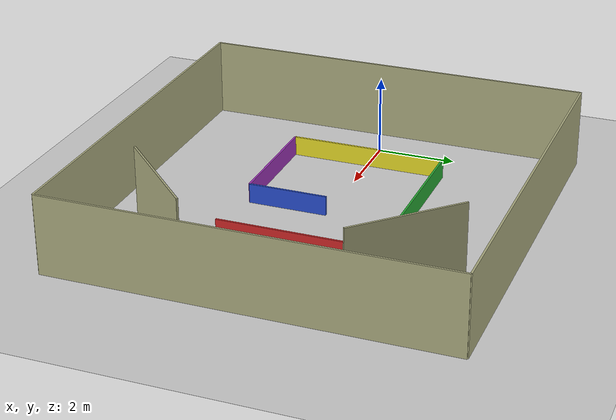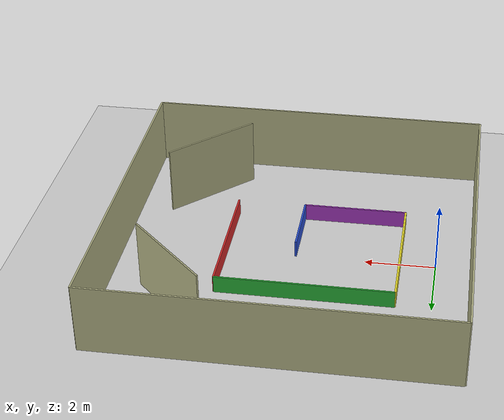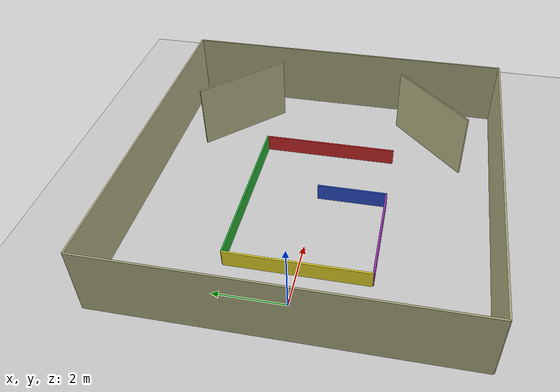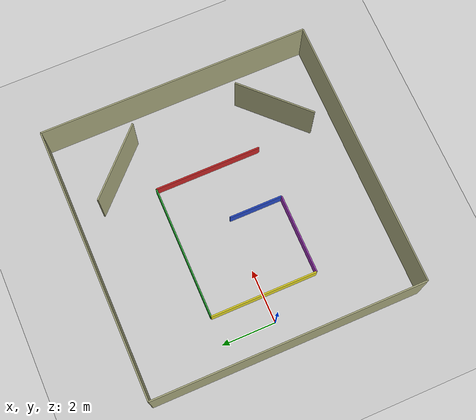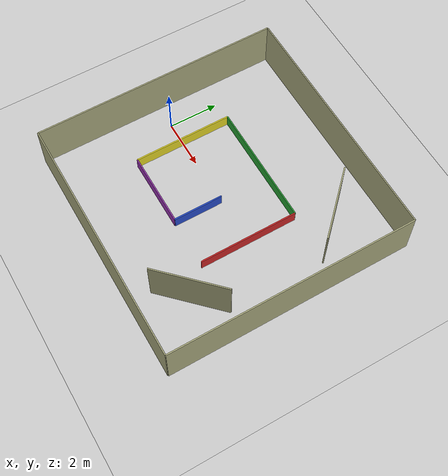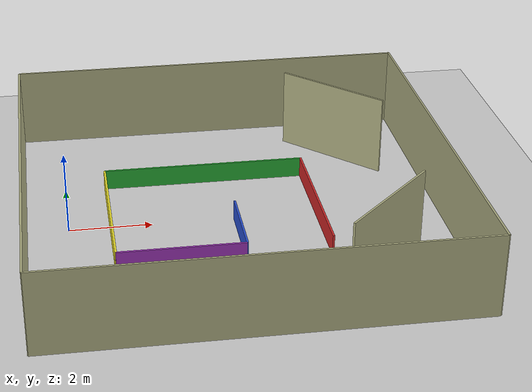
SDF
<?xml version="1.0" ?>

<sdf version="1.5">
  <!-- We use a custom world for the robot so that the camera angle is launched correctly -->
  <world name="diff_drive_world">

    <!-- Add a ground plane -->
    <include>
        <uri>model://ground_plane</uri>
        <material>
            <script>
                <uri>file://media/materials/scripts/gazebo.material</uri>
            </script>
        </material>
    </include>

    <!-- Global light source -->
    <include>
      <uri>model://sun</uri>
    </include>

    <!-- Apartment Walls -->

    <!-- factory -->
    <include>
      <uri>model://factory_simu</uri>
      <pose>4 0 0 0 0 0</pose>
    </include>

    <!-- Human -->

    <!-- Set up the solver used for simulation -->
    <physics name="ode_70iters" type="ode">
      <real_time_update_rate>1500</real_time_update_rate>
      <ode>
        <solver>
          <type>quick</type>
          <iters>70</iters>
        </solver>
      </ode>
    </physics>
  </world>
</sdf>

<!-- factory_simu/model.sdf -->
<sdf version='1.6'>
  <model name='walls'>
    <pose frame=''>0 0 0 0 -0 0</pose>

    <link name='Wall_48'>
      <collision name='Wall_48_Collision'>
        <geometry>
          <box>
            <size>10.0001 0.05 2.0</size>
          </box>
        </geometry>
        <pose frame=''>0 0 1.0 0 -0 0</pose>
      </collision>
      <visual name='Wall_48_Visual'>
        <pose frame=''>0 0 1.0 0 -0 0</pose>
        <geometry>
          <box>
            <size>10.00001 0.05 2.0</size>
          </box>
        </geometry>
        <material>
          <script>
            <uri>file://media/materials/scripts/gazebo.material</uri>
            <name>Gazebo/Grey</name>
          </script>
          <ambient>0.666667 0.666667 0.498039 1</ambient>
        </material>
      </visual>
      <pose frame=''>-5.0 0 0 0 -0 1.57215</pose>
    </link>

    <link name='Wall_49'>
      <collision name='Wall_49_Collision'>
        <geometry>
          <box>
            <size>10.00001 0.05 2.0</size>
          </box>
        </geometry>
        <pose frame=''>0 0 1.0 0 -0 0</pose>
      </collision>
      <visual name='Wall_49_Visual'>
        <pose frame=''>0 0 1.0 0 -0 0</pose>
        <geometry>
          <box>
            <size>10.00001 0.05 2.0</size>
          </box>
        </geometry>
        <material>
          <script>
            <uri>file://media/materials/scripts/gazebo.material</uri>
            <name>Gazebo/Grey</name>
          </script>
          <ambient>0.666667 0.666667 0.498039 1</ambient>
        </material>
      </visual>
      <pose frame=''>5.0 0 0 0 -0 1.57215</pose>
    </link>

    <link name='Wall_50'>
      <collision name='Wall_50_Collision'>
        <geometry>
          <box>
            <size>10.00001 0.05 2.0</size>
          </box>
        </geometry>
        <pose frame=''>0 0 1.0 0 -0 0</pose>
      </collision>
      <visual name='Wall_50_Visual'>
        <pose frame=''>0 0 1.0 0 -0 0</pose>
        <geometry>
          <box>
            <size>10.00001 0.05 2.0</size>
          </box>
        </geometry>
        <material>
          <script>
            <uri>file://media/materials/scripts/gazebo.material</uri>
            <name>Gazebo/Grey</name>
          </script>
          <ambient>0.666667 0.666667 0.498039 1</ambient>
        </material>
      </visual>
      <pose frame=''>0 5.0 0 0 -0 0</pose>
    </link>

    <link name='Wall_51'>
      <collision name='Wall_51_Collision'>
        <geometry>
          <box>
            <size>10.00001 0.05 2.0</size>
          </box>
        </geometry>
        <pose frame=''>0 0 1.0 0 -0 0</pose>
      </collision>
      <visual name='Wall_51_Visual'>
        <pose frame=''>0 0 1.0 0 -0 0</pose>
        <geometry>
          <box>
            <size>10.00001 0.05 2.0</size>
          </box>
        </geometry>
        <material>
          <script>
            <uri>file://media/materials/scripts/gazebo.material</uri>
            <name>Gazebo/Grey</name>
          </script>
          <ambient>0.666667 0.666667 0.498039 1</ambient>
        </material>
      </visual>
      <pose frame=''>0 -5.0 0 0 -0 0</pose>
    </link>

    <link name='Wall_52'>
      <collision name='Wall_52_Collision'>
        <geometry>
          <box>
            <size>3.00001 0.05 2.0</size>
          </box>
        </geometry>
        <pose frame=''>0 0 1.0 0 -0 0</pose>
      </collision>
      <visual name='Wall_52_Visual'>
        <pose frame=''>0 0 1.0 0 -0 0</pose>
        <geometry>
          <box>
            <size>3.00001 0.05 2.0</size>
          </box>
        </geometry>
        <material>
          <script>
            <uri>file://media/materials/scripts/gazebo.material</uri>
            <name>Gazebo/Grey</name>
          </script>
          <ambient>0.666667 0.666667 0.498039 1</ambient>
        </material>
      </visual>
      <pose frame=''>3.0 -3.0 0 0 -0 0.785</pose>
    </link>

    <link name='Wall_53'>
      <collision name='Wall_53_Collision'>
        <geometry>
          <box>
            <size>3.00001 0.05 2.0</size>
          </box>
        </geometry>
        <pose frame=''>0 0 1.0 0 -0 0</pose>
      </collision>
      <visual name='Wall_53_Visual'>
        <pose frame=''>0 0 1.0 0 -0 0</pose>
        <geometry>
          <box>
            <size>3.00001 0.05 2.0</size>
          </box>
        </geometry>
        <material>
          <script>
            <uri>file://media/materials/scripts/gazebo.material</uri>
            <name>Gazebo/Grey</name>
          </script>
          <ambient>0.666667 0.666667 0.498039 1</ambient>
        </material>
      </visual>
      <pose frame=''>3.0 3.0 0 0 -0 -0.785</pose>
    </link>

    <!--U Obstacle-->
    <!--U Obstacle-->

    <link name='box_54'>
      <collision name='Wall_54_Collision'>
        <geometry>
          <box>
            <size>4.00001 0.05 0.5</size>
          </box>
        </geometry>
        <pose frame=''>0 0 0.25 0 -0 0</pose>
      </collision>
      <visual name='Wall_54_Visual'>
        <pose frame=''>0 0 0.25 0 -0 0</pose>
        <geometry>
          <box>
            <size>4.00001 0.05 0.5</size>
          </box>
        </geometry>
        <material>
          <script>
            <uri>file://media/materials/scripts/gazebo.material</uri>
            <name>Gazebo/Red</name>
          </script>
          <ambient>0.666667 0.666667 0.498039 1</ambient>
        </material>
      </visual>
      <pose frame=''>2 0 0 0 -0 1.57215</pose>
    </link>

    <link name='box_55'>
      <collision name='Wall_55_Collision'>
        <geometry>
          <box>
            <size>5.00001 0.05 0.5</size>
          </box>
        </geometry>
        <pose frame=''>0 0 0.25 0 -0 0</pose>
      </collision>
      <visual name='Wall_55_Visual'>
        <pose frame=''>0 0 0.25 0 -0 0</pose>
        <geometry>
          <box>
            <size>5.00001 0.05 0.5</size>
          </box>
        </geometry>
        <material>
          <script>
            <uri>file://media/materials/scripts/gazebo.material</uri>
            <name>Gazebo/Green</name>
          </script>
          <ambient>0.666667 0.666667 0.498039 1</ambient>
        </material>
      </visual>
      <pose frame=''>-0.5 2 0 0 -0 0</pose>
    </link>

    <link name='box_56'>
      <collision name='Wall_56_Collision'>
        <geometry>
          <box>
            <size>4.00001 0.05 0.5</size>
          </box>
        </geometry>
        <pose frame=''>0 0 0.25 0 -0 0</pose>
      </collision>
      <visual name='Wall_56_Visual'>
        <pose frame=''>0 0 0.25 0 -0 0</pose>
        <geometry>
          <box>
            <size>4.00001 0.05 0.5</size>
          </box>
        </geometry>
        <material>
          <script>
            <uri>file://media/materials/scripts/gazebo.material</uri>
            <name>Gazebo/Yellow</name>
          </script>
          <ambient>0.666667 0.666667 0.498039 1</ambient>
        </material>
      </visual>
      <pose frame=''>-3 0 0 0 -0 1.57215</pose>
    </link>

    <link name='box_57'>
      <collision name='Wall_57_Collision'>
        <geometry>
          <box>
            <size>3.00001 0.05 0.5</size>
          </box>
        </geometry>
        <pose frame=''>0 0 0.25 0 -0 0</pose>
      </collision>
      <visual name='Wall_57_Visual'>
        <pose frame=''>0 0 0.25 0 -0 0</pose>
        <geometry>
          <box>
            <size>3.00001 0.05 0.5</size>
          </box>
        </geometry>
        <material>
          <script>
            <uri>file://media/materials/scripts/gazebo.material</uri>
            <name>Gazebo/Purple</name>
          </script>
          <ambient>0.666667 0.666667 0.498039 1</ambient>
        </material>
      </visual>
      <pose frame=''>-1.5 -2 0 0 -0 0</pose>
    </link>

    <link name='box_58'>
      <collision name='Wall_58_Collision'>
        <geometry>
          <box>
            <size>2.00001 0.05 0.5</size>
          </box>
        </geometry>
        <pose frame=''>0 0 0.25 0 -0 0</pose>
      </collision>
      <visual name='Wall_58_Visual'>
        <pose frame=''>0 0 0.25 0 -0 0</pose>
        <geometry>
          <box>
            <size>2.00001 0.05 0.5</size>
          </box>
        </geometry>
        <material>
          <script>
            <uri>file://media/materials/scripts/gazebo.material</uri>
            <name>Gazebo/Blue</name>
          </script>
          <ambient>0.666667 0.666667 0.498039 1</ambient>
        </material>
      </visual>
      <pose frame=''>0 -1 0 0 -0 1.57215</pose>
    </link>

    <static>1</static>
  </model>
</sdf>
